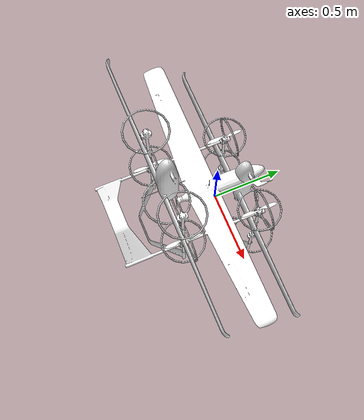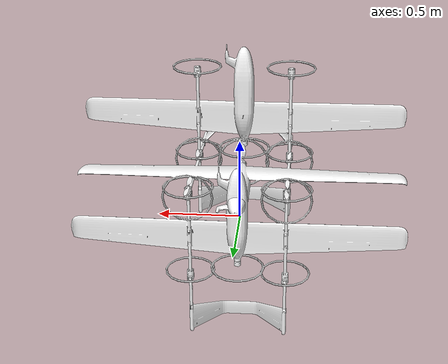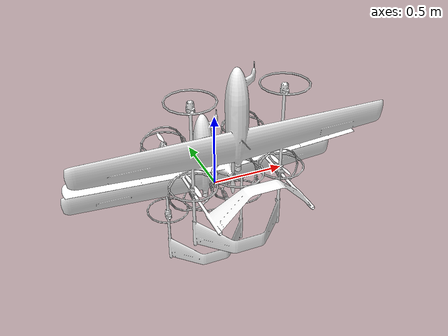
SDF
<sdf version="1.9">
 <world name="runway">
  <physics name="1ms" type="ignore">
   <max_step_size>0.001</max_step_size>
   <real_time_factor>1.0</real_time_factor>
  </physics>
  <plugin filename="gz-sim-physics-system" name="gz::sim::systems::Physics"/>
  <plugin filename="gz-sim-sensors-system" name="gz::sim::systems::Sensors">
   <render_engine>ogre2</render_engine>
  </plugin>
  <plugin filename="gz-sim-user-commands-system" name="gz::sim::systems::UserCommands"/>
  <plugin filename="gz-sim-scene-broadcaster-system" name="gz::sim::systems::SceneBroadcaster"/>
  <plugin filename="gz-sim-imu-system" name="gz::sim::systems::Imu"/>
  <scene><ambient>1.0 1.0 1.0</ambient><background>0.8 0.8 0.8</background></scene>
  <light type="directional" name="sun">
   <pose>0 0 10 0 0 0</pose>
   <diffuse>0.8 0.8 0.8 1</diffuse>
   <specular>0.8 0.8 0.8 1</specular>
   <attenuation>
    <range>1000</range>
    <constant>0.9</constant>
    <linear>0.01</linear>
    <quadratic>0.001</quadratic>
   </attenuation>
   <direction>-0.5 0.1 -0.9</direction>
  </light>
  <include><pose degrees="true">0 0 0.2 0 0 90</pose><uri>model://titan_cobra_vtol</uri></include>
 </world>
</sdf>

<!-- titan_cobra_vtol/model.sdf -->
<sdf version="1.9">
  <model name="titan_cobra_vtol">
    <pose>0 0 0 0 0 0</pose>
    <static>0</static>

    <link name="base_link">`
      <inertial>
        <pose>-0.054 0 0 0 0 0</pose>
        <mass>3.5</mass>
        <inertia>
          <ixx>0.010645833</ixx>
          <ixy>0</ixy>
          <ixz>0</ixz>
          <iyy>0.109929167</iyy>
          <iyz>0</iyz>
          <izz>0.110716667</izz>
        </inertia>
      </inertial>

      <collision name="collision">
        <geometry>
          <mesh>
            <uri>model://titan_cobra_vtol/meshes/titan_cobra_vtol.dae</uri>
            <submesh>
              <name>~CS_FUSELAGE</name>
            </submesh>
          </mesh>
        </geometry>
      </collision>

      <visual name="fuselage_visual">
        <geometry>
          <mesh>
            <uri>model://titan_cobra_vtol/meshes/titan_cobra_vtol.dae</uri>
            <submesh>
              <name>~CS_FUSELAGE</name>
            </submesh>
          </mesh>
        </geometry>
        <material>
          <ambient>1 1 1</ambient>
          <diffuse>1 1 1</diffuse>
          <specular>0.5 0.5 0.5</specular>
          <pbr>
            <metal>
              <albedo_map>model://titan_cobra_vtol/meshes/TitanCobraTexture.tga</albedo_map>
              <roughness>0.5</roughness>
              <metalness>0.5</metalness>
            </metal>
          </pbr>
        </material>
      </visual>

      <visual name="airspeed_visual">
        <geometry>
          <mesh>
            <uri>model://titan_cobra_vtol/meshes/titan_cobra_vtol.dae</uri>
            <submesh>
              <name>~CS_Airspeed</name>
            </submesh>
          </mesh>
        </geometry>
        <material>
          <ambient>1 1 1</ambient>
          <diffuse>1 1 1</diffuse>
          <specular>0.5 0.5 0.5</specular>
          <pbr>
            <metal>
              <albedo_map>model://titan_cobra_vtol/meshes/TitanCobraTexture.tga</albedo_map>
              <roughness>0.5</roughness>
              <metalness>0.5</metalness>
            </metal>
          </pbr>
        </material>
      </visual>

      <visual name="fpv_cam_visual">
        <geometry>
          <mesh>
            <uri>model://titan_cobra_vtol/meshes/titan_cobra_vtol.dae</uri>
            <submesh>
              <name>FPVCAM</name>
            </submesh>
          </mesh>
        </geometry>
        <material>
          <ambient>1 1 1</ambient>
          <diffuse>1 1 1</diffuse>
          <specular>0.5 0.5 0.5</specular>
          <pbr>
            <metal>
              <albedo_map>model://titan_cobra_vtol/meshes/TitanCobraTexture.tga</albedo_map>
              <roughness>0.5</roughness>
              <metalness>0.5</metalness>
            </metal>
          </pbr>
        </material>
      </visual>

      <visual name="pusher_mount_visual">
        <geometry>
          <mesh>
            <uri>model://titan_cobra_vtol/meshes/titan_cobra_vtol.dae</uri>
            <submesh>
              <name>~CS_PusherMount</name>
            </submesh>
          </mesh>
        </geometry>
        <material>
          <ambient>1 1 1</ambient>
          <diffuse>1 1 1</diffuse>
          <specular>0.5 0.5 0.5</specular>
          <pbr>
            <metal>
              <albedo_map>model://titan_cobra_vtol/meshes/TitanCobraTexture.tga</albedo_map>
              <roughness>0.5</roughness>
              <metalness>0.5</metalness>
            </metal>
          </pbr>
        </material>
      </visual>

      <visual name="stator_5_visual">
        <geometry>
          <mesh>
            <uri>model://titan_cobra_vtol/meshes/titan_cobra_vtol.dae</uri>
            <submesh>
              <name>~CS_STATOR5</name>
            </submesh>
          </mesh>
        </geometry>
        <material>
          <ambient>1 1 1</ambient>
          <diffuse>1 1 1</diffuse>
          <specular>0.5 0.5 0.5</specular>
          <pbr>
            <metal>
              <albedo_map>model://titan_cobra_vtol/meshes/TitanCobraTexture.tga</albedo_map>
              <roughness>0.5</roughness>
              <metalness>0.5</metalness>
            </metal>
          </pbr>
        </material>
      </visual>

      <visual name="left_main_wing_visual">
        <geometry>
          <mesh>
            <uri>model://titan_cobra_vtol/meshes/titan_cobra_vtol.dae</uri>
            <submesh>
              <name>~CS_LMW</name>
            </submesh>
          </mesh>
        </geometry>
        <material>
          <ambient>1 1 1</ambient>
          <diffuse>1 1 1</diffuse>
          <specular>0.5 0.5 0.5</specular>
          <pbr>
            <metal>
              <albedo_map>model://titan_cobra_vtol/meshes/TitanCobraTexture.tga</albedo_map>
              <roughness>0.5</roughness>
              <metalness>0.5</metalness>
            </metal>
          </pbr>
        </material>
      </visual>

      <visual name="left_boom_mount_visual">
        <geometry>
          <mesh>
            <uri>model://titan_cobra_vtol/meshes/titan_cobra_vtol.dae</uri>
            <submesh>
              <name>LBoomMount</name>
            </submesh>
          </mesh>
        </geometry>
        <material>
          <ambient>1 1 1</ambient>
          <diffuse>1 1 1</diffuse>
          <specular>0.5 0.5 0.5</specular>
          <pbr>
            <metal>
              <albedo_map>model://titan_cobra_vtol/meshes/TitanCobraTexture.tga</albedo_map>
              <roughness>0.5</roughness>
              <metalness>0.5</metalness>
            </metal>
          </pbr>
        </material>
      </visual>

      <visual name="left_boom_visual">
        <geometry>
          <mesh>
            <uri>model://titan_cobra_vtol/meshes/titan_cobra_vtol.dae</uri>
            <submesh>
              <name>~CS_LBoom</name>
            </submesh>
          </mesh>
        </geometry>
        <material>
          <ambient>1 1 1</ambient>
          <diffuse>1 1 1</diffuse>
          <specular>0.5 0.5 0.5</specular>
          <pbr>
            <metal>
              <albedo_map>model://titan_cobra_vtol/meshes/TitanCobraTexture.tga</albedo_map>
              <roughness>0.5</roughness>
              <metalness>0.5</metalness>
            </metal>
          </pbr>
        </material>
      </visual>

      <visual name="left_tail_visual">
        <geometry>
          <mesh>
            <uri>model://titan_cobra_vtol/meshes/titan_cobra_vtol.dae</uri>
            <submesh>
              <name>~CS_LTail</name>
            </submesh>
          </mesh>
        </geometry>
        <material>
          <ambient>1 1 1</ambient>
          <diffuse>1 1 1</diffuse>
          <specular>0.5 0.5 0.5</specular>
          <pbr>
            <metal>
              <albedo_map>model://titan_cobra_vtol/meshes/TitanCobraTexture.tga</albedo_map>
              <roughness>0.5</roughness>
              <metalness>0.5</metalness>
            </metal>
          </pbr>
        </material>
      </visual>

      <visual name="motor_mount_2_visual">
        <pose degrees="true">-0.335 0 0.412 0 -90 0</pose>
        <geometry>
          <mesh>
            <uri>model://titan_cobra_vtol/meshes/titan_cobra_vtol.dae</uri>
            <submesh>
              <name>~CS_MotorMount2</name>
            </submesh>
          </mesh>
        </geometry>
        <material>
          <ambient>1 1 1</ambient>
          <diffuse>1 1 1</diffuse>
          <specular>0.5 0.5 0.5</specular>
          <pbr>
            <metal>
              <albedo_map>model://titan_cobra_vtol/meshes/TitanCobraTexture.tga</albedo_map>
              <roughness>0.5</roughness>
              <metalness>0.5</metalness>
            </metal>
          </pbr>
        </material>
      </visual>

      <visual name="stator_2_visual">
        <pose degrees="true">-0.335 0 0.412 0 -90 0</pose>
        <geometry>
          <mesh>
            <uri>model://titan_cobra_vtol/meshes/titan_cobra_vtol.dae</uri>
            <submesh>
              <name>~CS_STATOR2</name>
            </submesh>
          </mesh>
        </geometry>
        <material>
          <ambient>1 1 1</ambient>
          <diffuse>1 1 1</diffuse>
          <specular>0.5 0.5 0.5</specular>
          <pbr>
            <metal>
              <albedo_map>model://titan_cobra_vtol/meshes/TitanCobraTexture.tga</albedo_map>
              <roughness>0.5</roughness>
              <metalness>0.5</metalness>
            </metal>
          </pbr>
        </material>
      </visual>

      <visual name="motor_mount_3_visual">
        <pose degrees="true">0.22 0 -0.147 0 -90 0</pose>
        <geometry>
          <mesh>
            <uri>model://titan_cobra_vtol/meshes/titan_cobra_vtol.dae</uri>
            <submesh>
              <name>~CS_MotorMount3</name>
            </submesh>
          </mesh>
        </geometry>
        <material>
          <ambient>1 1 1</ambient>
          <diffuse>1 1 1</diffuse>
          <specular>0.5 0.5 0.5</specular>
          <pbr>
            <metal>
              <albedo_map>model://titan_cobra_vtol/meshes/TitanCobraTexture.tga</albedo_map>
              <roughness>0.5</roughness>
              <metalness>0.5</metalness>
            </metal>
          </pbr>
        </material>
      </visual>

      <visual name="stator_3_visual">
        <pose degrees="true">0.22 0 -0.147 0 -90 0</pose>
        <geometry>
          <mesh>
            <uri>model://titan_cobra_vtol/meshes/titan_cobra_vtol.dae</uri>
            <submesh>
              <name>~CS_STATOR3</name>
            </submesh>
          </mesh>
        </geometry>
        <material>
          <ambient>1 1 1</ambient>
          <diffuse>1 1 1</diffuse>
          <specular>0.5 0.5 0.5</specular>
          <pbr>
            <metal>
              <albedo_map>model://titan_cobra_vtol/meshes/TitanCobraTexture.tga</albedo_map>
              <roughness>0.5</roughness>
              <metalness>0.5</metalness>
            </metal>
          </pbr>
        </material>
      </visual>

      <visual name="right_main_wing_visual">
        <geometry>
          <mesh>
            <uri>model://titan_cobra_vtol/meshes/titan_cobra_vtol.dae</uri>
            <submesh>
              <name>~CS_RMW</name>
            </submesh>
          </mesh>
        </geometry>
        <material>
          <ambient>1 1 1</ambient>
          <diffuse>1 1 1</diffuse>
          <specular>0.5 0.5 0.5</specular>
          <pbr>
            <metal>
              <albedo_map>model://titan_cobra_vtol/meshes/TitanCobraTexture.tga</albedo_map>
              <roughness>0.5</roughness>
              <metalness>0.5</metalness>
            </metal>
          </pbr>
        </material>
      </visual>

      <visual name="right_boom_mount_visual">
        <geometry>
          <mesh>
            <uri>model://titan_cobra_vtol/meshes/titan_cobra_vtol.dae</uri>
            <submesh>
              <name>RBoomMount</name>
            </submesh>
          </mesh>
        </geometry>
        <material>
          <ambient>1 1 1</ambient>
          <diffuse>1 1 1</diffuse>
          <specular>0.5 0.5 0.5</specular>
          <pbr>
            <metal>
              <albedo_map>model://titan_cobra_vtol/meshes/TitanCobraTexture.tga</albedo_map>
              <roughness>0.5</roughness>
              <metalness>0.5</metalness>
            </metal>
          </pbr>
        </material>
      </visual>

      <visual name="right_boom_visual">
        <geometry>
          <mesh>
            <uri>model://titan_cobra_vtol/meshes/titan_cobra_vtol.dae</uri>
            <submesh>
              <name>~CS_RBoom</name>
            </submesh>
          </mesh>
        </geometry>
        <material>
          <ambient>1 1 1</ambient>
          <diffuse>1 1 1</diffuse>
          <specular>0.5 0.5 0.5</specular>
          <pbr>
            <metal>
              <albedo_map>model://titan_cobra_vtol/meshes/TitanCobraTexture.tga</albedo_map>
              <roughness>0.5</roughness>
              <metalness>0.5</metalness>
            </metal>
          </pbr>
        </material>
      </visual>

      <visual name="right_tail_visual">
        <geometry>
          <mesh>
            <uri>model://titan_cobra_vtol/meshes/titan_cobra_vtol.dae</uri>
            <submesh>
              <name>~CS_RTail</name>
            </submesh>
          </mesh>
        </geometry>
        <material>
          <ambient>1 1 1</ambient>
          <diffuse>1 1 1</diffuse>
          <specular>0.5 0.5 0.5</specular>
          <pbr>
            <metal>
              <albedo_map>model://titan_cobra_vtol/meshes/TitanCobraTexture.tga</albedo_map>
              <roughness>0.5</roughness>
              <metalness>0.5</metalness>
            </metal>
          </pbr>
        </material>
      </visual>

      <visual name="motor_mount_1_visual">
        <pose degrees="true">0.22 0 -0.147 0 -90 0</pose>
        <geometry>
          <mesh>
            <uri>model://titan_cobra_vtol/meshes/titan_cobra_vtol.dae</uri>
            <submesh>
              <name>~CS_MotorMount1</name>
            </submesh>
          </mesh>
        </geometry>
        <material>
          <ambient>1 1 1</ambient>
          <diffuse>1 1 1</diffuse>
          <specular>0.5 0.5 0.5</specular>
          <pbr>
            <metal>
              <albedo_map>model://titan_cobra_vtol/meshes/TitanCobraTexture.tga</albedo_map>
              <roughness>0.5</roughness>
              <metalness>0.5</metalness>
            </metal>
          </pbr>
        </material>
      </visual>

      <visual name="stator_1_visual">
        <pose degrees="true">0.22 0 -0.147 0 -90 0</pose>
        <geometry>
          <mesh>
            <uri>model://titan_cobra_vtol/meshes/titan_cobra_vtol.dae</uri>
            <submesh>
              <name>~CS_STATOR1</name>
            </submesh>
          </mesh>
        </geometry>
        <material>
          <ambient>1 1 1</ambient>
          <diffuse>1 1 1</diffuse>
          <specular>0.5 0.5 0.5</specular>
          <pbr>
            <metal>
              <albedo_map>model://titan_cobra_vtol/meshes/TitanCobraTexture.tga</albedo_map>
              <roughness>0.5</roughness>
              <metalness>0.5</metalness>
            </metal>
          </pbr>
        </material>
      </visual>

      <visual name="motor_mount_4_visual">
        <pose degrees="true">-0.335 0 0.412 0 -90 0</pose>
        <geometry>
          <mesh>
            <uri>model://titan_cobra_vtol/meshes/titan_cobra_vtol.dae</uri>
            <submesh>
              <name>~CS_MotorMount4</name>
            </submesh>
          </mesh>
        </geometry>
        <material>
          <ambient>1 1 1</ambient>
          <diffuse>1 1 1</diffuse>
          <specular>0.5 0.5 0.5</specular>
          <pbr>
            <metal>
              <albedo_map>model://titan_cobra_vtol/meshes/TitanCobraTexture.tga</albedo_map>
              <roughness>0.5</roughness>
              <metalness>0.5</metalness>
            </metal>
          </pbr>
        </material>
      </visual>

      <visual name="stator_4_visual">
        <pose degrees="true">-0.335 0 0.412 0 -90 0</pose>
        <geometry>
          <mesh>
            <uri>model://titan_cobra_vtol/meshes/titan_cobra_vtol.dae</uri>
            <submesh>
              <name>~CS_STATOR4</name>
            </submesh>
          </mesh>
        </geometry>
        <material>
          <ambient>1 1 1</ambient>
          <diffuse>1 1 1</diffuse>
          <specular>0.5 0.5 0.5</specular>
          <pbr>
            <metal>
              <albedo_map>model://titan_cobra_vtol/meshes/TitanCobraTexture.tga</albedo_map>
              <roughness>0.5</roughness>
              <metalness>0.5</metalness>
            </metal>
          </pbr>
        </material>
      </visual>

    </link>

    <!-- control surfaces -->
    <link name="left_aileron_link">
      <pose relative_to="base_link" degrees="true">-0.115848 0.66957 0.056213 0 0 0</pose>
      <inertial>
        <pose degrees="true">-0.035 0 0 0 0 0</pose>
        <mass>0.1</mass>
        <inertia>
          <ixx>0.000477985</ixx>
          <ixy>0</ixy>
          <iyy>4.66283E-05</iyy>
          <ixz>0</ixz>
          <iyz>0</iyz>
          <izz>0.00052066</izz>
        </inertia>
      </inertial>
      <collision name="aileron_collision">
        <pose degrees="true">-0.035 0 0 0 0 0</pose>
        <geometry>
          <box>
            <size>0.0732 0.239 0.0154</size>
          </box>
        </geometry>
      </collision>
      <visual name="aileron_visual">
        <pose relative_to="base_link" degrees="true">0 0 0 0 0 0</pose>
        <geometry>
          <mesh>
            <uri>model://titan_cobra_vtol/meshes/titan_cobra_vtol.dae</uri>
            <submesh>
              <name>~CS_LA</name>
            </submesh>
          </mesh>
        </geometry>
        <material>
          <ambient>1 1 1</ambient>
          <diffuse>1 1 1</diffuse>
          <specular>0.5 0.5 0.5</specular>
          <pbr>
            <metal>
              <albedo_map>model://titan_cobra_vtol/meshes/TitanCobraTexture.tga</albedo_map>
              <roughness>0.5</roughness>
              <metalness>0.5</metalness>
            </metal>
          </pbr>
        </material>
      </visual>
    </link>
    <joint name="left_aileron_joint" type="revolute">
      <pose relative_to="base_link" degrees="true">-0.115848 0.66957 0.056213 0 0 0</pose>
      <parent>base_link</parent>
      <child>left_aileron_link</child>
      <axis>
        <xyz>0 1 0</xyz>
        <limit>
          <lower>-0.78539816</lower>
          <upper>0.78539816</upper>
        </limit>
        <dynamics>
          <damping>0.004</damping>
        </dynamics>
      </axis>
    </joint>

    <link name="right_aileron_link">
      <pose relative_to="base_link" degrees="true">-0.115848 -0.66957 0.056213 0 0 0</pose>
      <inertial>
        <pose degrees="true">-0.035 0 0 0 0 0</pose>
        <mass>0.1</mass>
        <inertia>
          <ixx>0.000477985</ixx>
          <ixy>0</ixy>
          <iyy>4.66283E-05</iyy>
          <ixz>0</ixz>
          <iyz>0</iyz>
          <izz>0.00052066</izz>
        </inertia>
      </inertial>
      <collision name="aileron_collision">
        <pose degrees="true">-0.035 0 0 0 0 0</pose>
        <geometry>
          <box>
            <size>0.0732 0.239 0.0154</size>
          </box>
        </geometry>
      </collision>
      <visual name="aileron_visual">
        <pose relative_to="base_link" degrees="true">0 0 0 0 0 0</pose>
        <geometry>
          <mesh>
            <uri>model://titan_cobra_vtol/meshes/titan_cobra_vtol.dae</uri>
            <submesh>
              <name>~CS_RA</name>
            </submesh>
          </mesh>
        </geometry>
        <material>
          <ambient>1 1 1</ambient>
          <diffuse>1 1 1</diffuse>
          <specular>0.5 0.5 0.5</specular>
          <pbr>
            <metal>
              <albedo_map>model://titan_cobra_vtol/meshes/TitanCobraTexture.tga</albedo_map>
              <roughness>0.5</roughness>
              <metalness>0.5</metalness>
            </metal>
          </pbr>
        </material>
      </visual>
    </link>
    <joint name="right_aileron_joint" type="revolute">
      <pose relative_to="base_link" degrees="true">-0.115848 -0.66957 0.056213 0 0 0</pose>
      <parent>base_link</parent>
      <child>right_aileron_link</child>
      <axis>
        <xyz>0 1 0</xyz>
        <limit>
          <lower>-0.78539816</lower>
          <upper>0.78539816</upper>
        </limit>
        <dynamics>
          <damping>0.004</damping>
        </dynamics>
      </axis>
    </joint>

    <link name="left_ruddervator_link">
      <pose relative_to="base_link" degrees="true">-0.718103 0.19396 0.127626 0 0 0</pose>
      <inertial>
        <pose degrees="true">-0.026 0 0 -45 0 0</pose>
        <mass>0.1</mass>
        <inertia>
          <ixx>0.000334932</ixx>
          <ixy>0</ixy>
          <iyy>2.86522E-05</iyy>
          <ixz>0</ixz>
          <iyz>0</iyz>
          <izz>0.000361594</izz>
        </inertia>
      </inertial>
      <collision name="ruddervator_collision">
        <pose degrees="true">-0.026 0 0 -45 0 0</pose>
        <geometry>
          <box>
            <size>0.057609 0.200181 0.01093</size>
          </box>
        </geometry>
      </collision>
      <visual name="ruddervator_visual">
        <pose relative_to="base_link" degrees="true">0 0 0 0 0 0</pose>
        <geometry>
          <mesh>
            <uri>model://titan_cobra_vtol/meshes/titan_cobra_vtol.dae</uri>
            <submesh>
              <name>~CS_LRV</name>
            </submesh>
          </mesh>
        </geometry>
        <material>
          <ambient>1 1 1</ambient>
          <diffuse>1 1 1</diffuse>
          <specular>0.5 0.5 0.5</specular>
          <pbr>
            <metal>
              <albedo_map>model://titan_cobra_vtol/meshes/TitanCobraTexture.tga</albedo_map>
              <roughness>0.5</roughness>
              <metalness>0.5</metalness>
            </metal>
          </pbr>
        </material>
      </visual>
    </link>
    <joint name="left_ruddervator_joint" type="revolute">
      <pose relative_to="base_link" degrees="true">-0.718103 0.19396 0.127626 -45 0 0</pose>
      <parent>base_link</parent>
      <child>left_ruddervator_link</child>
      <axis>
        <xyz>0 1 0</xyz>
        <limit>
          <lower>-0.78539816</lower>
          <upper>0.78539816</upper>
        </limit>
        <dynamics>
          <damping>0.004</damping>
        </dynamics>
      </axis>
    </joint>

    <link name="right_ruddervator_link">
      <pose relative_to="base_link" degrees="true">-0.718103 -0.19396 0.127626 0 0 0</pose>
      <inertial>
        <pose degrees="true">-0.026 0 0 45 0 0</pose>
        <mass>0.1</mass>
        <inertia>
          <ixx>0.000334932</ixx>
          <ixy>0</ixy>
          <iyy>2.86522E-05</iyy>
          <ixz>0</ixz>
          <iyz>0</iyz>
          <izz>0.000361594</izz>
        </inertia>
      </inertial>
      <collision name="ruddervator_collision">
        <pose degrees="true">-0.026 0 0 45 0 0</pose>
        <geometry>
          <box>
            <size>0.057609 0.200181 0.01093</size>
          </box>
        </geometry>
      </collision>
      <visual name="ruddervator_visual">
        <pose relative_to="base_link" degrees="true">0 0 0 0 0 0</pose>
        <geometry>
          <mesh>
            <uri>model://titan_cobra_vtol/meshes/titan_cobra_vtol.dae</uri>
            <submesh>
              <name>~CS_RRV</name>
            </submesh>
          </mesh>
        </geometry>
        <material>
          <ambient>1 1 1</ambient>
          <diffuse>1 1 1</diffuse>
          <specular>0.5 0.5 0.5</specular>
          <pbr>
            <metal>
              <albedo_map>model://titan_cobra_vtol/meshes/TitanCobraTexture.tga</albedo_map>
              <roughness>0.5</roughness>
              <metalness>0.5</metalness>
            </metal>
          </pbr>
        </material>
      </visual>
    </link>
    <joint name="right_ruddervator_joint" type="revolute">
      <pose relative_to="base_link" degrees="true">-0.718103 -0.19396 0.127626 45 0 0</pose>
      <parent>base_link</parent>
      <child>right_ruddervator_link</child>
      <axis>
        <xyz>0 1 0</xyz>
        <limit>
          <lower>-0.78539816</lower>
          <upper>0.78539816</upper>
        </limit>
        <dynamics>
          <damping>0.004</damping>
        </dynamics>
      </axis>
    </joint>

    <!-- motors -->
    <link name="motor_1_link">
      <pose relative_to="base_link">0.1875 -0.29 0.06 0 0 0</pose>
      <inertial>
        <pose>0 0 0 0 0 0</pose>
        <mass>0.025</mass>
        <inertia>
          <ixx>9.75e-06</ixx>
          <ixy>0</ixy>
          <ixz>0</ixz>
          <iyy>0.000166704</iyy>
          <iyz>0</iyz>
          <izz>0.000167604</izz>
        </inertia>
      </inertial>
      <collision name="spinner_collision">
        <pose relative_to="base_link" degrees="true">0 0 0 0 0 0</pose>
        <geometry>
          <cylinder>
            <length>0.005</length>
            <radius>0.105</radius>
          </cylinder>
        </geometry>
      </collision>
      <visual name="spinner_visual">
        <pose relative_to="base_link" degrees="true">0.22 0 -0.147 0 -90 0</pose>
        <geometry>
          <mesh>
            <uri>model://titan_cobra_vtol/meshes/titan_cobra_vtol.dae</uri>
            <submesh>
              <name>~CS_SPINNER1</name>
            </submesh>
          </mesh>
        </geometry>
        <material>
          <ambient>1 1 1</ambient>
          <diffuse>1 1 1</diffuse>
          <specular>0.5 0.5 0.5</specular>
          <pbr>
            <metal>
              <albedo_map>model://titan_cobra_vtol/meshes/TitanCobraTexture.tga</albedo_map>
              <roughness>0.5</roughness>
              <metalness>0.5</metalness>
            </metal>
          </pbr>
        </material>
      </visual>
      <visual name="prop_visual">
        <pose degrees="true">0 0 0.027 0 0 0</pose>
        <geometry>
          <mesh>
            <scale>1 1 1</scale>
            <uri>model://titan_cobra_vtol/meshes/prop_ccw.dae</uri>
          </mesh>
        </geometry>
         <material>
          <ambient>1 1 1</ambient>
          <diffuse>1 1 1</diffuse>
          <specular>1 1 1</specular>
          <pbr>
            <metal>
              <albedo_map>model://titan_cobra_vtol/materials/textures/metal_graphite/metal_graphite_basecolor.jpg</albedo_map>
              <metalness_map>model://titan_cobra_vtol/materials/textures/metal_graphite/metal_graphite_metallic.jpg</metalness_map>
              <normal_map>model://titan_cobra_vtol/materials/textures/metal_graphite/metal_graphite_normal.jpg</normal_map>
              <roughness_map>model://titan_cobra_vtol/materials/textures/metal_graphite/metal_graphite_roughness.jpg</roughness_map>
              <roughness>1.0</roughness>
              <metalness>1.0</metalness>
            </metal>
          </pbr>
        </material>
      </visual>
    </link>
    <joint name="motor_1_joint" type="revolute">
      <pose relative_to="base_link">0.1875 -0.29 0.06 0 0 0</pose>
      <parent>base_link</parent>
      <child>motor_1_link</child>
      <axis>
        <xyz>0 0 1</xyz>
        <limit>
          <lower>-1e+16</lower>
          <upper>1e+16</upper>
        </limit>
        <dynamics>
          <damping>0.004</damping>
        </dynamics>
      </axis>
    </joint>

    <link name="motor_2_link">
      <pose relative_to="base_link">-0.367 0.29 0.06 0 0 0</pose>
      <inertial>
        <pose>0 0 0 0 0 0</pose>
        <mass>0.025</mass>
        <inertia>
          <ixx>9.75e-06</ixx>
          <ixy>0</ixy>
          <ixz>0</ixz>
          <iyy>0.000166704</iyy>
          <iyz>0</iyz>
          <izz>0.000167604</izz>
        </inertia>
      </inertial>
      <collision name="spinner_collision">
        <pose relative_to="base_link" degrees="true">0 0 0 0 0 0</pose>
        <geometry>
          <cylinder>
            <length>0.005</length>
            <radius>0.105</radius>
          </cylinder>
        </geometry>
      </collision>
      <visual name="spinner_visual">
        <pose relative_to="base_link" degrees="true">-0.335 0 0.412 0 -90 0</pose>
        <geometry>
          <mesh>
            <uri>model://titan_cobra_vtol/meshes/titan_cobra_vtol.dae</uri>
            <submesh>
              <name>~CS_SPINNER2</name>
            </submesh>
          </mesh>
        </geometry>
        <material>
          <ambient>1 1 1</ambient>
          <diffuse>1 1 1</diffuse>
          <specular>0.5 0.5 0.5</specular>
          <pbr>
            <metal>
              <albedo_map>model://titan_cobra_vtol/meshes/TitanCobraTexture.tga</albedo_map>
              <roughness>0.5</roughness>
              <metalness>0.5</metalness>
            </metal>
          </pbr>
        </material>
      </visual>
      <visual name="prop_visual">
        <pose degrees="true">0 0 0.027 0 0 0</pose>
        <geometry>
          <mesh>
            <scale>1 1 1</scale>
            <uri>model://titan_cobra_vtol/meshes/prop_ccw.dae</uri>
          </mesh>
        </geometry>
         <material>
          <ambient>1 1 1</ambient>
          <diffuse>1 1 1</diffuse>
          <specular>1 1 1</specular>
          <pbr>
            <metal>
              <albedo_map>model://titan_cobra_vtol/materials/textures/metal_graphite/metal_graphite_basecolor.jpg</albedo_map>
              <metalness_map>model://titan_cobra_vtol/materials/textures/metal_graphite/metal_graphite_metallic.jpg</metalness_map>
              <normal_map>model://titan_cobra_vtol/materials/textures/metal_graphite/metal_graphite_normal.jpg</normal_map>
              <roughness_map>model://titan_cobra_vtol/materials/textures/metal_graphite/metal_graphite_roughness.jpg</roughness_map>
              <roughness>1.0</roughness>
              <metalness>1.0</metalness>
            </metal>
          </pbr>
        </material>
      </visual>
    </link>
    <joint name="motor_2_joint" type="revolute">
      <pose relative_to="base_link">-0.367 0.29 0.06 0 0 0</pose>
      <parent>base_link</parent>
      <child>motor_2_link</child>
      <axis>
        <xyz>0 0 1</xyz>
        <limit>
          <lower>-1e+16</lower>
          <upper>1e+16</upper>
        </limit>
        <dynamics>
          <damping>0.004</damping>
        </dynamics>
      </axis>
    </joint>

    <link name="motor_3_link">
      <pose relative_to="base_link">0.1875 0.29 0.06 0 0 0</pose>
      <inertial>
        <pose>0 0 0 0 0 0</pose>
        <mass>0.025</mass>
        <inertia>
          <ixx>9.75e-06</ixx>
          <ixy>0</ixy>
          <ixz>0</ixz>
          <iyy>0.000166704</iyy>
          <iyz>0</iyz>
          <izz>0.000167604</izz>
        </inertia>
      </inertial>
      <collision name="spinner_collision">
        <pose degrees="true">0 0 0 0 0 0</pose>
        <geometry>
          <cylinder>
            <length>0.005</length>
            <radius>0.105</radius>
          </cylinder>
        </geometry>
      </collision>
      <visual name="spinner_visual">
        <pose relative_to="base_link" degrees="true">0.22 0 -0.147 0 -90 0</pose>
        <geometry>
          <mesh>
            <uri>model://titan_cobra_vtol/meshes/titan_cobra_vtol.dae</uri>
            <submesh>
              <name>~CS_SPINNER3</name>
            </submesh>
          </mesh>
        </geometry>
        <material>
          <ambient>1 1 1</ambient>
          <diffuse>1 1 1</diffuse>
          <specular>0.5 0.5 0.5</specular>
          <pbr>
            <metal>
              <albedo_map>model://titan_cobra_vtol/meshes/TitanCobraTexture.tga</albedo_map>
              <roughness>0.5</roughness>
              <metalness>0.5</metalness>
            </metal>
          </pbr>
        </material>
      </visual>
      <visual name="prop_visual">
        <pose degrees="true">0 0 0.027 0 0 0</pose>
        <geometry>
          <mesh>
            <scale>1 1 1</scale>
            <uri>model://titan_cobra_vtol/meshes/prop_cw.dae</uri>
          </mesh>
        </geometry>
         <material>
          <ambient>1 1 1</ambient>
          <diffuse>1 1 1</diffuse>
          <specular>1 1 1</specular>
          <pbr>
            <metal>
              <albedo_map>model://titan_cobra_vtol/materials/textures/metal_graphite/metal_graphite_basecolor.jpg</albedo_map>
              <metalness_map>model://titan_cobra_vtol/materials/textures/metal_graphite/metal_graphite_metallic.jpg</metalness_map>
              <normal_map>model://titan_cobra_vtol/materials/textures/metal_graphite/metal_graphite_normal.jpg</normal_map>
              <roughness_map>model://titan_cobra_vtol/materials/textures/metal_graphite/metal_graphite_roughness.jpg</roughness_map>
              <roughness>1.0</roughness>
              <metalness>1.0</metalness>
            </metal>
          </pbr>
        </material>
      </visual>
    </link>
    <joint name="motor_3_joint" type="revolute">
      <pose relative_to="base_link">0.1875 0.29 0.06 0 0 0</pose>
      <parent>base_link</parent>
      <child>motor_3_link</child>
      <axis>
        <xyz>0 0 1</xyz>
        <limit>
          <lower>-1e+16</lower>
          <upper>1e+16</upper>
        </limit>
        <dynamics>
          <damping>0.004</damping>
        </dynamics>
      </axis>
    </joint>

    <link name="motor_4_link">
      <pose relative_to="base_link">-0.367 -0.29 0.06 0 0 0</pose>
      <inertial>
        <pose>0 0 0 0 0 0</pose>
        <mass>0.025</mass>
        <inertia>
          <ixx>9.75e-06</ixx>
          <ixy>0</ixy>
          <ixz>0</ixz>
          <iyy>0.000166704</iyy>
          <iyz>0</iyz>
          <izz>0.000167604</izz>
        </inertia>
      </inertial>
      <collision name="spinner_collision">
        <pose relative_to="base_link" degrees="true">0 0 0 0 0 0</pose>
        <geometry>
          <cylinder>
            <length>0.005</length>
            <radius>0.105</radius>
          </cylinder>
        </geometry>
      </collision>
      <visual name="spinner_visual">
        <pose relative_to="base_link" degrees="true">-0.335 0 0.412 0 -90 0</pose>
        <geometry>
          <mesh>
            <uri>model://titan_cobra_vtol/meshes/titan_cobra_vtol.dae</uri>
            <submesh>
              <name>~CS_SPINNER4</name>
            </submesh>
          </mesh>
        </geometry>
        <material>
          <ambient>1 1 1</ambient>
          <diffuse>1 1 1</diffuse>
          <specular>0.5 0.5 0.5</specular>
          <pbr>
            <metal>
              <albedo_map>model://titan_cobra_vtol/meshes/TitanCobraTexture.tga</albedo_map>
              <roughness>0.5</roughness>
              <metalness>0.5</metalness>
            </metal>
          </pbr>
        </material>
      </visual>
      <visual name="prop_visual">
        <pose degrees="true">0 0 0.027 0 0 0</pose>
        <geometry>
          <mesh>
            <scale>1 1 1</scale>
            <uri>model://titan_cobra_vtol/meshes/prop_cw.dae</uri>
          </mesh>
        </geometry>
         <material>
          <ambient>1 1 1</ambient>
          <diffuse>1 1 1</diffuse>
          <specular>1 1 1</specular>
          <pbr>
            <metal>
              <albedo_map>model://titan_cobra_vtol/materials/textures/metal_graphite/metal_graphite_basecolor.jpg</albedo_map>
              <metalness_map>model://titan_cobra_vtol/materials/textures/metal_graphite/metal_graphite_metallic.jpg</metalness_map>
              <normal_map>model://titan_cobra_vtol/materials/textures/metal_graphite/metal_graphite_normal.jpg</normal_map>
              <roughness_map>model://titan_cobra_vtol/materials/textures/metal_graphite/metal_graphite_roughness.jpg</roughness_map>
              <roughness>1.0</roughness>
              <metalness>1.0</metalness>
            </metal>
          </pbr>
        </material>
      </visual>
    </link>
    <joint name="motor_4_joint" type="revolute">
      <pose relative_to="base_link">-0.367 -0.29 0.06 0 0 0</pose>
      <parent>base_link</parent>
      <child>motor_4_link</child>
      <axis>
        <xyz>0 0 1</xyz>
        <limit>
          <lower>-1e+16</lower>
          <upper>1e+16</upper>
        </limit>
        <dynamics>
          <damping>0.004</damping>
        </dynamics>
      </axis>
    </joint>

    <link name="motor_5_link">
      <pose relative_to="base_link" degrees="true">-0.268 0 0.03 0 -90 0</pose>
      <inertial>
        <pose>0 0 0 0 0 0</pose>
        <mass>0.025</mass>
        <inertia>
          <ixx>9.75e-06</ixx>
          <ixy>0</ixy>
          <ixz>0</ixz>
          <iyy>0.000166704</iyy>
          <iyz>0</iyz>
          <izz>0.000167604</izz>
        </inertia>
      </inertial>
      <collision name="spinner_collision">
        <pose relative_to="base_link" degrees="true">0 0 0 0 0 0</pose>
        <geometry>
          <cylinder>
            <length>0.005</length>
            <radius>0.105</radius>
          </cylinder>
        </geometry>
      </collision>
      <visual name="spinner_visual">
        <pose relative_to="base_link" degrees="true">0 0 0 0 0 0</pose>
        <geometry>
          <mesh>
            <uri>model://titan_cobra_vtol/meshes/titan_cobra_vtol.dae</uri>
            <submesh>
              <name>~CS_SPINNER5</name>
            </submesh>
          </mesh>
        </geometry>
        <material>
          <ambient>1 1 1</ambient>
          <diffuse>1 1 1</diffuse>
          <specular>0.5 0.5 0.5</specular>
          <pbr>
            <metal>
              <albedo_map>model://titan_cobra_vtol/meshes/TitanCobraTexture.tga</albedo_map>
              <roughness>0.5</roughness>
              <metalness>0.5</metalness>
            </metal>
          </pbr>
        </material>
      </visual>
      <visual name="prop_visual">
        <pose degrees="true">0 0 0.027 0 180 0</pose>
        <geometry>
          <mesh>
            <scale>1 1 1</scale>
            <uri>model://titan_cobra_vtol/meshes/prop_ccw.dae</uri>
          </mesh>
        </geometry>
         <material>
          <ambient>1 1 1</ambient>
          <diffuse>1 1 1</diffuse>
          <specular>1 1 1</specular>
          <pbr>
            <metal>
              <albedo_map>model://titan_cobra_vtol/materials/textures/metal_graphite/metal_graphite_basecolor.jpg</albedo_map>
              <metalness_map>model://titan_cobra_vtol/materials/textures/metal_graphite/metal_graphite_metallic.jpg</metalness_map>
              <normal_map>model://titan_cobra_vtol/materials/textures/metal_graphite/metal_graphite_normal.jpg</normal_map>
              <roughness_map>model://titan_cobra_vtol/materials/textures/metal_graphite/metal_graphite_roughness.jpg</roughness_map>
              <roughness>1.0</roughness>
              <metalness>1.0</metalness>
            </metal>
          </pbr>
        </material>
      </visual>
    </link>
    <joint name="motor_5_joint" type="revolute">
      <pose relative_to="base_link" degrees="true">-0.268 0 0.03 0 -90 0</pose>
      <parent>base_link</parent>
      <child>motor_5_link</child>
      <axis>
        <xyz>0 0 1</xyz>
        <limit>
          <lower>-1e+16</lower>
          <upper>1e+16</upper>
        </limit>
        <dynamics>
          <damping>0.004</damping>
        </dynamics>
      </axis>
    </joint>

    <!-- sensors -->
    <link name="imu_link">
      <inertial>
        <pose>0 0 0 0 0 0</pose>
        <mass>0.15</mass>
        <inertia>
          <ixx>0.00002</ixx>
          <ixy>0</ixy>
          <ixz>0</ixz>
          <iyy>0.00002</iyy>
          <iyz>0</iyz>
          <izz>0.00002</izz>
        </inertia>
      </inertial>
      <sensor name="imu_sensor" type="imu">
        <pose degrees="true">0 0 0 180 0 0</pose>
        <always_on>1</always_on>
        <update_rate>1000.0</update_rate>
      </sensor>
    </link>
    <joint name="imu_joint" type="revolute">
      <child>imu_link</child>
      <parent>base_link</parent>
      <axis>
        <xyz>0 0 1</xyz>
        <limit>
          <lower>0</lower>
          <upper>0</upper>
        </limit>
        <dynamics>
          <damping>1.0</damping>
        </dynamics>
      </axis>
    </joint>

    <!-- plugins -->
    <plugin name="gz::sim::systems::JointStatePublisher"
      filename="gz-sim-joint-state-publisher-system">
    </plugin>

    <plugin name="gz::sim::systems::JointPositionController"
        filename="gz-sim-joint-position-controller-system">
      <joint_name>left_aileron_joint</joint_name>
      <topic>/left_aileron/cmd_pos</topic>
      <use_force_commands>1</use_force_commands>
      <p_gain>1</p_gain>
      <i_gain>0</i_gain>
      <d_gain>0.1</d_gain>
      <i_max>1</i_max>
      <i_min>-1</i_min>
      <cmd_max>5</cmd_max>
      <cmd_min>-5</cmd_min>
    </plugin>

    <plugin name="gz::sim::systems::JointPositionController"
        filename="gz-sim-joint-position-controller-system">
      <joint_name>right_aileron_joint</joint_name>
      <topic>/right_aileron/cmd_pos</topic>
      <use_force_commands>1</use_force_commands>
      <p_gain>1</p_gain>
      <i_gain>0</i_gain>
      <d_gain>0.1</d_gain>
      <i_max>1</i_max>
      <i_min>-1</i_min>
      <cmd_max>5</cmd_max>
      <cmd_min>-5</cmd_min>
    </plugin>

    <plugin name="gz::sim::systems::JointPositionController"
        filename="gz-sim-joint-position-controller-system">
      <joint_name>left_ruddervator_joint</joint_name>
      <topic>/left_ruddervator/cmd_pos</topic>
      <use_force_commands>1</use_force_commands>
      <p_gain>1</p_gain>
      <i_gain>0</i_gain>
      <d_gain>0.1</d_gain>
      <i_max>1</i_max>
      <i_min>-1</i_min>
      <cmd_max>5</cmd_max>
      <cmd_min>-5</cmd_min>
    </plugin>

    <plugin name="gz::sim::systems::JointPositionController"
        filename="gz-sim-joint-position-controller-system">
      <joint_name>right_ruddervator_joint</joint_name>
      <topic>/right_ruddervator/cmd_pos</topic>
      <use_force_commands>1</use_force_commands>
      <p_gain>1</p_gain>
      <i_gain>0</i_gain>
      <d_gain>0.1</d_gain>
      <i_max>1</i_max>
      <i_min>-1</i_min>
      <cmd_max>5</cmd_max>
      <cmd_min>-5</cmd_min>
    </plugin>

    <plugin name="gz::sim::systems::JointController"
      filename="gz-sim-joint-controller-system">
      <joint_name>motor_1_joint</joint_name>
      <topic>/motor_1/cmd_vel</topic>
      <initial_velocity>0.0</initial_velocity>
      <use_force_commands>1</use_force_commands>
      <p_gain>0.2</p_gain>
      <i_gain>0.0</i_gain>
      <d_gain>0.0</d_gain>
      <i_max>1</i_max>
      <i_min>-1</i_min>
      <cmd_max>5</cmd_max>
      <cmd_min>-5</cmd_min>
    </plugin>

    <plugin name="gz::sim::systems::JointController"
      filename="gz-sim-joint-controller-system">
      <joint_name>motor_2_joint</joint_name>
      <topic>/motor_2/cmd_vel</topic>
      <initial_velocity>0.0</initial_velocity>
      <use_force_commands>1</use_force_commands>
      <p_gain>0.2</p_gain>
      <i_gain>0.0</i_gain>
      <d_gain>0.0</d_gain>
      <i_max>1</i_max>
      <i_min>-1</i_min>
      <cmd_max>5</cmd_max>
      <cmd_min>-5</cmd_min>
    </plugin>

    <plugin name="gz::sim::systems::JointController"
      filename="gz-sim-joint-controller-system">
      <joint_name>motor_3_joint</joint_name>
      <topic>/motor_3/cmd_vel</topic>
      <initial_velocity>0.0</initial_velocity>
      <use_force_commands>1</use_force_commands>
      <p_gain>0.2</p_gain>
      <i_gain>0.0</i_gain>
      <d_gain>0.0</d_gain>
      <i_max>1</i_max>
      <i_min>-1</i_min>
      <cmd_max>5</cmd_max>
      <cmd_min>-5</cmd_min>
    </plugin>

    <plugin name="gz::sim::systems::JointController"
      filename="gz-sim-joint-controller-system">
      <joint_name>motor_4_joint</joint_name>
      <topic>/motor_4/cmd_vel</topic>
      <initial_velocity>0.0</initial_velocity>
      <use_force_commands>1</use_force_commands>
      <p_gain>0.2</p_gain>
      <i_gain>0.0</i_gain>
      <d_gain>0.0</d_gain>
      <i_max>1</i_max>
      <i_min>-1</i_min>
      <cmd_max>5</cmd_max>
      <cmd_min>-5</cmd_min>
    </plugin>

    <plugin name="gz::sim::systems::JointController"
      filename="gz-sim-joint-controller-system">
      <joint_name>motor_5_joint</joint_name>
      <topic>/motor_5/cmd_vel</topic>
      <initial_velocity>0.0</initial_velocity>
      <use_force_commands>1</use_force_commands>
      <p_gain>0.2</p_gain>
      <i_gain>0.0</i_gain>
      <d_gain>0.0</d_gain>
      <i_max>1</i_max>
      <i_min>-1</i_min>
      <cmd_max>5</cmd_max>
      <cmd_min>-5</cmd_min>
    </plugin>

    <!-- lift-drag from iris wih area increased -->
    <plugin name="gz::sim::systems::LiftDrag"
      filename="gz-sim-lift-drag-system">
      <a0>0.3</a0>
      <alpha_stall>1.4</alpha_stall>
      <cla>4.2500</cla>
      <cda>0.10</cda>
      <cma>0.0</cma>
      <cla_stall>-0.025</cla_stall>
      <cda_stall>0.0</cda_stall>
      <cma_stall>0.0</cma_stall>
      <area>0.0025</area>
      <air_density>1.2041</air_density>
      <cp>0.1 0 0</cp>
      <forward>0 1 0</forward>
      <upward>0 0 1</upward>
      <link_name>motor_1_link</link_name>
    </plugin>
    <plugin name="gz::sim::systems::LiftDrag"
      filename="gz-sim-lift-drag-system">
      <a0>0.3</a0>
      <alpha_stall>1.4</alpha_stall>
      <cla>4.2500</cla>
      <cda>0.10</cda>
      <cma>0.0</cma>
      <cla_stall>-0.025</cla_stall>
      <cda_stall>0.0</cda_stall>
      <cma_stall>0.0</cma_stall>
      <area>0.0025</area>
      <air_density>1.2041</air_density>
      <cp>-0.1 0 0</cp>
      <forward>0 -1 0</forward>
      <upward>0 0 1</upward>
      <link_name>motor_1_link</link_name>
    </plugin>

    <plugin name="gz::sim::systems::LiftDrag"
      filename="gz-sim-lift-drag-system">
      <a0>0.3</a0>
      <alpha_stall>1.4</alpha_stall>
      <cla>4.2500</cla>
      <cda>0.10</cda>
      <cma>0.0</cma>
      <cla_stall>-0.025</cla_stall>
      <cda_stall>0.0</cda_stall>
      <cma_stall>0.0</cma_stall>
      <area>0.0025</area>
      <air_density>1.2041</air_density>
      <cp>0.1 0 0</cp>
      <forward>0 1 0</forward>
      <upward>0 0 1</upward>
      <link_name>motor_2_link</link_name>
    </plugin>
    <plugin name="gz::sim::systems::LiftDrag"
      filename="gz-sim-lift-drag-system">
      <a0>0.3</a0>
      <alpha_stall>1.4</alpha_stall>
      <cla>4.2500</cla>
      <cda>0.10</cda>
      <cma>0.0</cma>
      <cla_stall>-0.025</cla_stall>
      <cda_stall>0.0</cda_stall>
      <cma_stall>0.0</cma_stall>
      <area>0.0025</area>
      <air_density>1.2041</air_density>
      <cp>-0.1 0 0</cp>
      <forward>0 -1 0</forward>
      <upward>0 0 1</upward>
      <link_name>motor_2_link</link_name>
    </plugin>

    <plugin name="gz::sim::systems::LiftDrag"
      filename="gz-sim-lift-drag-system">
      <a0>0.3</a0>
      <alpha_stall>1.4</alpha_stall>
      <cla>4.2500</cla>
      <cda>0.10</cda>
      <cma>0.0</cma>
      <cla_stall>-0.025</cla_stall>
      <cda_stall>0.0</cda_stall>
      <cma_stall>0.0</cma_stall>
      <area>0.0025</area>
      <air_density>1.2041</air_density>
      <cp>0.1 0 0</cp>
      <forward>0 -1 0</forward>
      <upward>0 0 1</upward>
      <link_name>motor_3_link</link_name>
    </plugin>
    <plugin name="gz::sim::systems::LiftDrag"
      filename="gz-sim-lift-drag-system">
      <a0>0.3</a0>
      <alpha_stall>1.4</alpha_stall>
      <cla>4.2500</cla>
      <cda>0.10</cda>
      <cma>0.0</cma>
      <cla_stall>-0.025</cla_stall>
      <cda_stall>0.0</cda_stall>
      <cma_stall>0.0</cma_stall>
      <area>0.0025</area>
      <air_density>1.2041</air_density>
      <cp>-0.1 0 0</cp>
      <forward>0 1 0</forward>
      <upward>0 0 1</upward>
      <link_name>motor_3_link</link_name>
    </plugin>

    <plugin name="gz::sim::systems::LiftDrag"
      filename="gz-sim-lift-drag-system">
      <a0>0.3</a0>
      <alpha_stall>1.4</alpha_stall>
      <cla>4.2500</cla>
      <cda>0.10</cda>
      <cma>0.0</cma>
      <cla_stall>-0.025</cla_stall>
      <cda_stall>0.0</cda_stall>
      <cma_stall>0.0</cma_stall>
      <area>0.0025</area>
      <air_density>1.2041</air_density>
      <cp>0.1 0 0</cp>
      <forward>0 -1 0</forward>
      <upward>0 0 1</upward>
      <link_name>motor_4_link</link_name>
    </plugin>
    <plugin name="gz::sim::systems::LiftDrag"
      filename="gz-sim-lift-drag-system">
      <a0>0.3</a0>
      <alpha_stall>1.4</alpha_stall>
      <cla>4.2500</cla>
      <cda>0.10</cda>
      <cma>0.0</cma>
      <cla_stall>-0.025</cla_stall>
      <cda_stall>0.0</cda_stall>
      <cma_stall>0.0</cma_stall>
      <area>0.0025</area>
      <air_density>1.2041</air_density>
      <cp>-0.1 0 0</cp>
      <forward>0 1 0</forward>
      <upward>0 0 1</upward>
      <link_name>motor_4_link</link_name>
    </plugin>

    <plugin name="ArduPilotPlugin" filename="ArduPilotPlugin">
      <!-- Connection -->
      <fdm_addr>127.0.0.1</fdm_addr>
      <fdm_port_in>9002</fdm_port_in>
      <connectionTimeoutMaxCount>5</connectionTimeoutMaxCount>
      <lock_step>1</lock_step>
      <have_32_channels>0</have_32_channels>

      <!-- Frame transformations -->
      <modelXYZToAirplaneXForwardZDown degrees="true">0 0 0 180 0 0</modelXYZToAirplaneXForwardZDown>
      <gazeboXYZToNED degrees="true">0 0 0 180 0 90</gazeboXYZToNED>

      <!-- Sensors -->
      <imuName>imu_sensor</imuName>

      <!--
          SERVO1_FUNCTION   4 (Aileron) +/- 30 deg
          SERVO1_MAX        2000
          SERVO1_MIN        1000
          SERVO1_REVERSED   0
          SERVO1_TRIM       1500
       -->
      <control channel="0">
        <jointName>left_aileron_joint</jointName>
        <multiplier>-1.0471976</multiplier>
        <offset>-0.5</offset>
        <servo_max>2000</servo_max>
        <servo_min>1000</servo_min>
        <type>COMMAND</type>
        <cmd_topic>/left_aileron/cmd_pos</cmd_topic>
      </control>

      <control channel="0">
        <jointName>right_aileron_joint</jointName>
        <multiplier>1.0471976</multiplier>
        <offset>-0.5</offset>
        <servo_max>2000</servo_max>
        <servo_min>1000</servo_min>
        <type>COMMAND</type>
        <cmd_topic>/right_aileron/cmd_pos</cmd_topic>
      </control>

      <control channel="1">
        <jointName>left_ruddervator_joint</jointName>
        <multiplier>1.0471976</multiplier>
        <offset>-0.5</offset>
        <servo_max>2000</servo_max>
        <servo_min>1000</servo_min>
        <type>COMMAND</type>
        <cmd_topic>/left_ruddervator/cmd_pos</cmd_topic>
      </control>

      <!--
          SERVO3_FUNCTION   70 (Throttle)
          SERVO3_MAX        2000
          SERVO3_MIN        1000
          SERVO3_REVERSED   0
          SERVO3_TRIM       1000
       -->
      <control channel="2">
        <jointName>motor_5_joint</jointName>
        <multiplier>900</multiplier>
        <offset>0</offset>
        <servo_max>2000</servo_max>
        <servo_min>1000</servo_min>
        <type>COMMAND</type>
        <cmd_topic>/motor_5/cmd_vel</cmd_topic>
      </control>

      <control channel="3">
        <jointName>right_ruddervator_joint</jointName>
        <multiplier>1.0471976</multiplier>
        <offset>-0.5</offset>
        <servo_max>2000</servo_max>
        <servo_min>1000</servo_min>
        <type>COMMAND</type>
        <cmd_topic>/right_ruddervator/cmd_pos</cmd_topic>
      </control>

      <!--
          SERVO5_FUNCTION   33 (Motor1) Front Right CCW
          SERVO5_MAX        2000
          SERVO5_MIN        1000
          SERVO5_REVERSED   0
          SERVO5_TRIM       1500
       -->
      <control channel="4">
        <jointName>motor_1_joint</jointName>
        <useForce>1</useForce>
        <multiplier>900</multiplier>
        <offset>0</offset>
        <servo_max>2000</servo_max>
        <servo_min>1000</servo_min>
        <type>COMMAND</type>
        <cmd_topic>/motor_1/cmd_vel</cmd_topic>
      </control>

      <!--
          SERVO6_FUNCTION   34 (Motor2) Rear Left CCW
          SERVO6_MAX        2000
          SERVO6_MIN        1000
          SERVO6_REVERSED   0
          SERVO6_TRIM       1500
       -->
      <control channel="5">
        <jointName>motor_2_joint</jointName>
        <useForce>1</useForce>
        <multiplier>900</multiplier>
        <offset>0</offset>
        <servo_max>2000</servo_max>
        <servo_min>1000</servo_min>
        <type>COMMAND</type>
        <cmd_topic>/motor_2/cmd_vel</cmd_topic>
      </control>

      <!--
          SERVO7_FUNCTION   35 (Motor3) Front Left CW
          SERVO7_MAX        2000
          SERVO7_MIN        1000
          SERVO7_REVERSED   0
          SERVO7_TRIM       1500
       -->
      <control channel="6">
        <jointName>motor_3_joint</jointName>
        <useForce>1</useForce>
        <multiplier>-900</multiplier>
        <offset>0</offset>
        <servo_max>2000</servo_max>
        <servo_min>1000</servo_min>
        <type>COMMAND</type>
        <cmd_topic>/motor_3/cmd_vel</cmd_topic>
      </control>

      <!--
          SERVO8_FUNCTION   36 (Motor4) Rear Right CW
          SERVO8_MAX        2000
          SERVO8_MIN        1000
          SERVO8_REVERSED   0
          SERVO8_TRIM       1500
       -->
      <control channel="7">
        <jointName>motor_4_joint</jointName>
        <useForce>1</useForce>
        <multiplier>-900</multiplier>
        <offset>0</offset>
        <servo_max>2000</servo_max>
        <servo_min>1000</servo_min>
        <type>COMMAND</type>
        <cmd_topic>/motor_4/cmd_vel</cmd_topic>
      </control>

    </plugin>

  </model>
</sdf>
